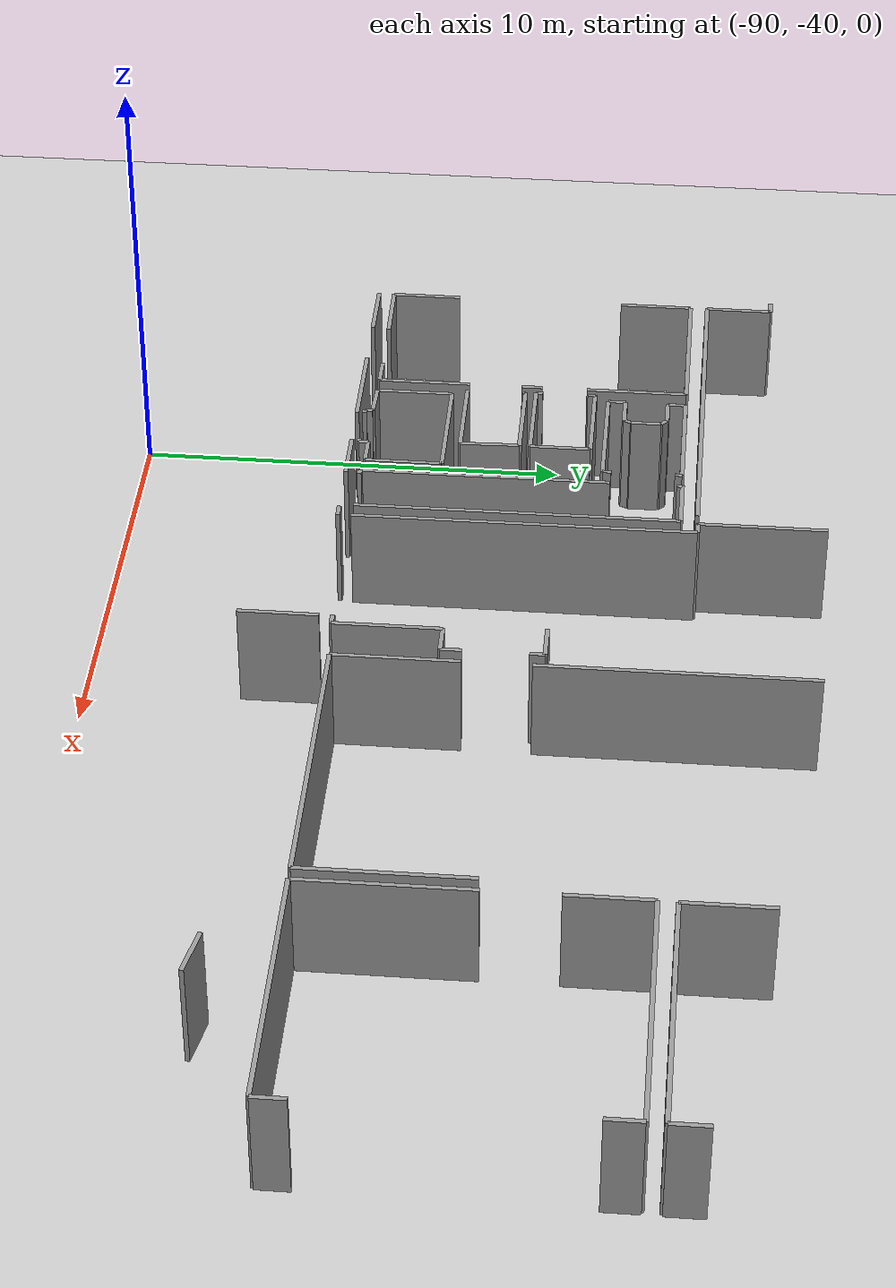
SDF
<sdf version="1.6">
 <world name="default">
  <model name="ground_plane">
   <static>1</static>
   <link name="link">
    <collision name="collision">
     <geometry><plane><normal>0 0 1</normal><size>100 100</size></plane></geometry>
     <surface><friction><ode><mu>100</mu><mu2>50</mu2></ode></friction></surface>
    </collision>
    <visual name="visual">
     <cast_shadows>0</cast_shadows>
     <geometry><plane><normal>0 0 1</normal><size>100 100</size></plane></geometry>
     <material>
      <script><uri>file://media/materials/scripts/gazebo.material</uri><name>Gazebo/Grey</name></script>
     </material>
    </visual>
   </link>
  </model>
  <model name="0510035517_A_40_1_105">
   <static>1</static>
   <link name="Wall_366">
    <collision name="Wall_366_Collision">
     <geometry><box><size>1.55747444133 0.1 2.5</size></box></geometry>
     <pose>0.778737220666 0 1.25 0 0 0</pose>
    </collision>
    <visual name="Wall_366_Visual">
     <pose>0.778737220666 0 1.25 0 0 0</pose>
     <geometry><box><size>1.55747444133 0.1 2.5</size></box></geometry>
     <material>
      <script><uri>file://media/materials/scripts/gazebo.material</uri><name>Gazebo/Grey</name></script>
      <ambient>1 1 1 1</ambient>
     </material>
    </visual>
    <pose>0.742646918663 -90.3431755653 0 0 0 1.57079632679</pose>
   </link>
   <link name="Wall_367">
    <collision name="Wall_367_Collision">
     <geometry><box><size>0.362936276472 0.1 2.5</size></box></geometry>
     <pose>0.181468138236 0 1.25 0 0 0</pose>
    </collision>
    <visual name="Wall_367_Visual">
     <pose>0.181468138236 0 1.25 0 0 0</pose>
     <geometry><box><size>0.362936276472 0.1 2.5</size></box></geometry>
     <material>
      <script><uri>file://media/materials/scripts/gazebo.material</uri><name>Gazebo/Grey</name></script>
      <ambient>1 1 1 1</ambient>
     </material>
    </visual>
    <pose>0.742646918663 -88.785701124 0 0 0 3.14159265359</pose>
   </link>
   <link name="Wall_374">
    <collision name="Wall_374_Collision">
     <geometry><box><size>8.55443944035 0.1 2.5</size></box></geometry>
     <pose>4.27721972017 0 1.25 0 0 0</pose>
    </collision>
    <visual name="Wall_374_Visual">
     <pose>4.27721972017 0 1.25 0 0 0</pose>
     <geometry><box><size>8.55443944035 0.1 2.5</size></box></geometry>
     <material>
      <script><uri>file://media/materials/scripts/gazebo.material</uri><name>Gazebo/Grey</name></script>
      <ambient>1 1 1 1</ambient>
     </material>
    </visual>
    <pose>9.29706512139 -90.3622373446 0 0 0 3.13936436088</pose>
   </link>
   <link name="Wall_375">
    <collision name="Wall_375_Collision">
     <geometry><box><size>5.75309912761 0.1 2.5</size></box></geometry>
     <pose>2.8765495638 0 1.25 0 0 0</pose>
    </collision>
    <visual name="Wall_375_Visual">
     <pose>2.8765495638 0 1.25 0 0 0</pose>
     <geometry><box><size>5.75309912761 0.1 2.5</size></box></geometry>
     <material>
      <script><uri>file://media/materials/scripts/gazebo.material</uri><name>Gazebo/Grey</name></script>
      <ambient>1 1 1 1</ambient>
     </material>
    </visual>
    <pose>8.18919451275 -98.1585050482 0 0 0 1.57079632679</pose>
   </link>
   <link name="Wall_376">
    <collision name="Wall_376_Collision">
     <geometry><box><size>0.129874255796 0.1 2.5</size></box></geometry>
     <pose>0.0649371278982 0 1.25 0 0 0</pose>
    </collision>
    <visual name="Wall_376_Visual">
     <pose>0.0649371278982 0 1.25 0 0 0</pose>
     <geometry><box><size>0.129874255796 0.1 2.5</size></box></geometry>
     <material>
      <script><uri>file://media/materials/scripts/gazebo.material</uri><name>Gazebo/Grey</name></script>
      <ambient>1 1 1 1</ambient>
     </material>
    </visual>
    <pose>8.18919451275 -90.8680098867 0 0 0 1.57079632679</pose>
   </link>
   <link name="Wall_377">
    <collision name="Wall_377_Collision">
     <geometry><box><size>1.33584948819 0.1 2.5</size></box></geometry>
     <pose>0.667924744096 0 1.25 0 0 0</pose>
    </collision>
    <visual name="Wall_377_Visual">
     <pose>0.667924744096 0 1.25 0 0 0</pose>
     <geometry><box><size>1.33584948819 0.1 2.5</size></box></geometry>
     <material>
      <script><uri>file://media/materials/scripts/gazebo.material</uri><name>Gazebo/Grey</name></script>
      <ambient>1 1 1 1</ambient>
     </material>
    </visual>
    <pose>8.18919451275 -90.7381356309 0 0 0 0.0</pose>
   </link>
   <link name="Wall_378">
    <collision name="Wall_378_Collision">
     <geometry><box><size>7.45010579287 0.1 2.5</size></box></geometry>
     <pose>3.72505289644 0 1.25 0 0 0</pose>
    </collision>
    <visual name="Wall_378_Visual">
     <pose>3.72505289644 0 1.25 0 0 0</pose>
     <geometry><box><size>7.45010579287 0.1 2.5</size></box></geometry>
     <material>
      <script><uri>file://media/materials/scripts/gazebo.material</uri><name>Gazebo/Grey</name></script>
      <ambient>1 1 1 1</ambient>
     </material>
    </visual>
    <pose>9.52504400094 -90.7381356309 0 0 0 -1.57079632679</pose>
   </link>
   <link name="Wall_379">
    <collision name="Wall_379_Collision">
     <geometry><box><size>0.132739590557 0.1 2.5</size></box></geometry>
     <pose>0.0663697952783 0 1.25 0 0 0</pose>
    </collision>
    <visual name="Wall_379_Visual">
     <pose>0.0663697952783 0 1.25 0 0 0</pose>
     <geometry><box><size>0.132739590557 0.1 2.5</size></box></geometry>
     <material>
      <script><uri>file://media/materials/scripts/gazebo.material</uri><name>Gazebo/Grey</name></script>
      <ambient>1 1 1 1</ambient>
     </material>
    </visual>
    <pose>8.31856045443 -98.1882414238 0 0 0 2.91565488454</pose>
   </link>
   <link name="Wall_380">
    <collision name="Wall_380_Collision">
     <geometry><box><size>0.408938703672 0.1 2.5</size></box></geometry>
     <pose>0.204469351836 0 1.25 0 0 0</pose>
    </collision>
    <visual name="Wall_380_Visual">
     <pose>0.204469351836 0 1.25 0 0 0</pose>
     <geometry><box><size>0.408938703672 0.1 2.5</size></box></geometry>
     <material>
      <script><uri>file://media/materials/scripts/gazebo.material</uri><name>Gazebo/Grey</name></script>
      <ambient>1 1 1 1</ambient>
     </material>
    </visual>
    <pose>4.94233811784 -92.5927196711 0 0 0 1.57079632679</pose>
   </link>
   <link name="Wall_381">
    <collision name="Wall_381_Collision">
     <geometry><box><size>0.739342876931 0.1 2.5</size></box></geometry>
     <pose>0.369671438465 0 1.25 0 0 0</pose>
    </collision>
    <visual name="Wall_381_Visual">
     <pose>0.369671438465 0 1.25 0 0 0</pose>
     <geometry><box><size>0.739342876931 0.1 2.5</size></box></geometry>
     <material>
      <script><uri>file://media/materials/scripts/gazebo.material</uri><name>Gazebo/Grey</name></script>
      <ambient>1 1 1 1</ambient>
     </material>
    </visual>
    <pose>4.94233811784 -92.1837809674 0 0 0 0.0</pose>
   </link>
   <link name="Wall_382">
    <collision name="Wall_382_Collision">
     <geometry><box><size>0.188575972376 0.1 2.5</size></box></geometry>
     <pose>0.0942879861882 0 1.25 0 0 0</pose>
    </collision>
    <visual name="Wall_382_Visual">
     <pose>0.0942879861882 0 1.25 0 0 0</pose>
     <geometry><box><size>0.188575972376 0.1 2.5</size></box></geometry>
     <material>
      <script><uri>file://media/materials/scripts/gazebo.material</uri><name>Gazebo/Grey</name></script>
      <ambient>1 1 1 1</ambient>
     </material>
    </visual>
    <pose>5.68168099477 -92.1837809674 0 0 0 1.11739549598</pose>
   </link>
   <link name="Wall_383">
    <collision name="Wall_383_Collision">
     <geometry><box><size>0.706302459605 0.1 2.5</size></box></geometry>
     <pose>0.353151229802 0 1.25 0 0 0</pose>
    </collision>
    <visual name="Wall_383_Visual">
     <pose>0.353151229802 0 1.25 0 0 0</pose>
     <geometry><box><size>0.706302459605 0.1 2.5</size></box></geometry>
     <material>
      <script><uri>file://media/materials/scripts/gazebo.material</uri><name>Gazebo/Grey</name></script>
      <ambient>1 1 1 1</ambient>
     </material>
    </visual>
    <pose>5.76428203809 -92.0142582109 0 0 0 1.57079632679</pose>
   </link>
   <link name="Wall_384">
    <collision name="Wall_384_Collision">
     <geometry><box><size>0.189802066533 0.1 2.5</size></box></geometry>
     <pose>0.0949010332663 0 1.25 0 0 0</pose>
    </collision>
    <visual name="Wall_384_Visual">
     <pose>0.0949010332663 0 1.25 0 0 0</pose>
     <geometry><box><size>0.189802066533 0.1 2.5</size></box></geometry>
     <material>
      <script><uri>file://media/materials/scripts/gazebo.material</uri><name>Gazebo/Grey</name></script>
      <ambient>1 1 1 1</ambient>
     </material>
    </visual>
    <pose>5.76428203809 -91.3079557513 0 0 0 2.37134484607</pose>
   </link>
   <link name="Wall_385">
    <collision name="Wall_385_Collision">
     <geometry><box><size>0.669195529377 0.1 2.5</size></box></geometry>
     <pose>0.334597764689 0 1.25 0 0 0</pose>
    </collision>
    <visual name="Wall_385_Visual">
     <pose>0.334597764689 0 1.25 0 0 0</pose>
     <geometry><box><size>0.669195529377 0.1 2.5</size></box></geometry>
     <material>
      <script><uri>file://media/materials/scripts/gazebo.material</uri><name>Gazebo/Grey</name></script>
      <ambient>1 1 1 1</ambient>
     </material>
    </visual>
    <pose>5.62805385588 -91.175794082 0 0 0 3.14159265359</pose>
   </link>
   <link name="Wall_386">
    <collision name="Wall_386_Collision">
     <geometry><box><size>0.417325886532 0.1 2.5</size></box></geometry>
     <pose>0.208662943266 0 1.25 0 0 0</pose>
    </collision>
    <visual name="Wall_386_Visual">
     <pose>0.208662943266 0 1.25 0 0 0</pose>
     <geometry><box><size>0.417325886532 0.1 2.5</size></box></geometry>
     <material>
      <script><uri>file://media/materials/scripts/gazebo.material</uri><name>Gazebo/Grey</name></script>
      <ambient>1 1 1 1</ambient>
     </material>
    </visual>
    <pose>4.9588583265 -91.175794082 0 0 0 1.57079632679</pose>
   </link>
   <link name="Wall_387">
    <collision name="Wall_387_Collision">
     <geometry><box><size>2.81301029971 0.1 2.5</size></box></geometry>
     <pose>1.40650514986 0 1.25 0 0 0</pose>
    </collision>
    <visual name="Wall_387_Visual">
     <pose>1.40650514986 0 1.25 0 0 0</pose>
     <geometry><box><size>2.81301029971 0.1 2.5</size></box></geometry>
     <material>
      <script><uri>file://media/materials/scripts/gazebo.material</uri><name>Gazebo/Grey</name></script>
      <ambient>1 1 1 1</ambient>
     </material>
    </visual>
    <pose>4.9588583265 -90.7584681954 0 0 0 0.0</pose>
   </link>
   <link name="Wall_388">
    <collision name="Wall_388_Collision">
     <geometry><box><size>0.164693772517 0.1 2.5</size></box></geometry>
     <pose>0.0823468862584 0 1.25 0 0 0</pose>
    </collision>
    <visual name="Wall_388_Visual">
     <pose>0.0823468862584 0 1.25 0 0 0</pose>
     <geometry><box><size>0.164693772517 0.1 2.5</size></box></geometry>
     <material>
      <script><uri>file://media/materials/scripts/gazebo.material</uri><name>Gazebo/Grey</name></script>
      <ambient>1 1 1 1</ambient>
     </material>
    </visual>
    <pose>7.77186862622 -90.7584681954 0 0 0 -1.57079632679</pose>
   </link>
   <link name="Wall_389">
    <collision name="Wall_389_Collision">
     <geometry><box><size>0.198496661012 0.1 2.5</size></box></geometry>
     <pose>0.0992483305058 0 1.25 0 0 0</pose>
    </collision>
    <visual name="Wall_389_Visual">
     <pose>0.0992483305058 0 1.25 0 0 0</pose>
     <geometry><box><size>0.198496661012 0.1 2.5</size></box></geometry>
     <material>
      <script><uri>file://media/materials/scripts/gazebo.material</uri><name>Gazebo/Grey</name></script>
      <ambient>1 1 1 1</ambient>
     </material>
    </visual>
    <pose>7.77186862622 -92.3942230101 0 0 0 -1.57079632679</pose>
   </link>
   <link name="Wall_390">
    <collision name="Wall_390_Collision">
     <geometry><box><size>2.82953050838 0.1 2.5</size></box></geometry>
     <pose>1.41476525419 0 1.25 0 0 0</pose>
    </collision>
    <visual name="Wall_390_Visual">
     <pose>1.41476525419 0 1.25 0 0 0</pose>
     <geometry><box><size>2.82953050838 0.1 2.5</size></box></geometry>
     <material>
      <script><uri>file://media/materials/scripts/gazebo.material</uri><name>Gazebo/Grey</name></script>
      <ambient>1 1 1 1</ambient>
     </material>
    </visual>
    <pose>7.77186862622 -92.5927196711 0 0 0 3.14159265359</pose>
   </link>
   <link name="Wall_391">
    <collision name="Wall_391_Collision">
     <geometry><box><size>1.64490446872 0.1 2.5</size></box></geometry>
     <pose>0.822452234358 0 1.25 0 0 0</pose>
    </collision>
    <visual name="Wall_391_Visual">
     <pose>0.822452234358 0 1.25 0 0 0</pose>
     <geometry><box><size>1.64490446872 0.1 2.5</size></box></geometry>
     <material>
      <script><uri>file://media/materials/scripts/gazebo.material</uri><name>Gazebo/Grey</name></script>
      <ambient>1 1 1 1</ambient>
     </material>
    </visual>
    <pose>0.739342876931 -98.1226689032 0 0 0 1.57079632679</pose>
   </link>
   <link name="Wall_392">
    <collision name="Wall_392_Collision">
     <geometry><box><size>1.71962664328 0.1 2.5</size></box></geometry>
     <pose>0.859813321642 0 1.25 0 0 0</pose>
    </collision>
    <visual name="Wall_392_Visual">
     <pose>0.859813321642 0 1.25 0 0 0</pose>
     <geometry><box><size>1.71962664328 0.1 2.5</size></box></geometry>
     <material>
      <script><uri>file://media/materials/scripts/gazebo.material</uri><name>Gazebo/Grey</name></script>
      <ambient>1 1 1 1</ambient>
     </material>
    </visual>
    <pose>0.739342876931 -92.4719950694 0 0 0 1.57079632679</pose>
   </link>
   <link name="Wall_393">
    <collision name="Wall_393_Collision">
     <geometry><box><size>3.75720376407 0.1 2.5</size></box></geometry>
     <pose>1.87860188203 0 1.25 0 0 0</pose>
    </collision>
    <visual name="Wall_393_Visual">
     <pose>1.87860188203 0 1.25 0 0 0</pose>
     <geometry><box><size>3.75720376407 0.1 2.5</size></box></geometry>
     <material>
      <script><uri>file://media/materials/scripts/gazebo.material</uri><name>Gazebo/Grey</name></script>
      <ambient>1 1 1 1</ambient>
     </material>
    </visual>
    <pose>0.739342876931 -90.7523684261 0 0 0 0.0</pose>
   </link>
   <link name="Wall_394">
    <collision name="Wall_394_Collision">
     <geometry><box><size>2.36874376521 0.1 2.5</size></box></geometry>
     <pose>1.1843718826 0 1.25 0 0 0</pose>
    </collision>
    <visual name="Wall_394_Visual">
     <pose>1.1843718826 0 1.25 0 0 0</pose>
     <geometry><box><size>2.36874376521 0.1 2.5</size></box></geometry>
     <material>
      <script><uri>file://media/materials/scripts/gazebo.material</uri><name>Gazebo/Grey</name></script>
      <ambient>1 1 1 1</ambient>
     </material>
    </visual>
    <pose>4.496546641 -90.7523684261 0 0 0 -1.57079632679</pose>
   </link>
   <link name="Wall_395">
    <collision name="Wall_395_Collision">
     <geometry><box><size>0.490268961705 0.1 2.5</size></box></geometry>
     <pose>0.245134480852 0 1.25 0 0 0</pose>
    </collision>
    <visual name="Wall_395_Visual">
     <pose>0.245134480852 0 1.25 0 0 0</pose>
     <geometry><box><size>0.490268961705 0.1 2.5</size></box></geometry>
     <material>
      <script><uri>file://media/materials/scripts/gazebo.material</uri><name>Gazebo/Grey</name></script>
      <ambient>1 1 1 1</ambient>
     </material>
    </visual>
    <pose>4.496546641 -94.1928924979 0 0 0 -1.57079632679</pose>
   </link>
   <link name="Wall_396">
    <collision name="Wall_396_Collision">
     <geometry><box><size>2.16872216186 0.1 2.5</size></box></geometry>
     <pose>1.08436108093 0 1.25 0 0 0</pose>
    </collision>
    <visual name="Wall_396_Visual">
     <pose>1.08436108093 0 1.25 0 0 0</pose>
     <geometry><box><size>2.16872216186 0.1 2.5</size></box></geometry>
     <material>
      <script><uri>file://media/materials/scripts/gazebo.material</uri><name>Gazebo/Grey</name></script>
      <ambient>1 1 1 1</ambient>
     </material>
    </visual>
    <pose>4.496546641 -95.9325975487 0 0 0 -1.57079632679</pose>
   </link>
   <link name="Wall_397">
    <collision name="Wall_397_Collision">
     <geometry><box><size>0.70731908783 0.1 2.5</size></box></geometry>
     <pose>0.353659543915 0 1.25 0 0 0</pose>
    </collision>
    <visual name="Wall_397_Visual">
     <pose>0.353659543915 0 1.25 0 0 0</pose>
     <geometry><box><size>0.70731908783 0.1 2.5</size></box></geometry>
     <material>
      <script><uri>file://media/materials/scripts/gazebo.material</uri><name>Gazebo/Grey</name></script>
      <ambient>1 1 1 1</ambient>
     </material>
    </visual>
    <pose>4.496546641 -98.1013197105 0 0 0 3.14159265359</pose>
   </link>
   <link name="Wall_398">
    <collision name="Wall_398_Collision">
     <geometry><box><size>1.55939968972 0.1 2.5</size></box></geometry>
     <pose>0.779699844859 0 1.25 0 0 0</pose>
    </collision>
    <visual name="Wall_398_Visual">
     <pose>0.779699844859 0 1.25 0 0 0</pose>
     <geometry><box><size>1.55939968972 0.1 2.5</size></box></geometry>
     <material>
      <script><uri>file://media/materials/scripts/gazebo.material</uri><name>Gazebo/Grey</name></script>
      <ambient>1 1 1 1</ambient>
     </material>
    </visual>
    <pose>2.29859641766 -98.1013197105 0 0 0 -3.12790157756</pose>
   </link>
   <link name="Wall_399">
    <collision name="Wall_399_Collision">
     <geometry><box><size>2.14838959735 0.1 2.5</size></box></geometry>
     <pose>1.07419479868 0 1.25 0 0 0</pose>
    </collision>
    <visual name="Wall_399_Visual">
     <pose>1.07419479868 0 1.25 0 0 0</pose>
     <geometry><box><size>2.14838959735 0.1 2.5</size></box></geometry>
     <material>
      <script><uri>file://media/materials/scripts/gazebo.material</uri><name>Gazebo/Grey</name></script>
      <ambient>1 1 1 1</ambient>
     </material>
    </visual>
    <pose>4.76620727779 -92.9172782321 0 0 0 0.0</pose>
   </link>
   <link name="Wall_400">
    <collision name="Wall_400_Collision">
     <geometry><box><size>1.40930087748 0.1 2.5</size></box></geometry>
     <pose>0.704650438739 0 1.25 0 0 0</pose>
    </collision>
    <visual name="Wall_400_Visual">
     <pose>0.704650438739 0 1.25 0 0 0</pose>
     <geometry><box><size>1.40930087748 0.1 2.5</size></box></geometry>
     <material>
      <script><uri>file://media/materials/scripts/gazebo.material</uri><name>Gazebo/Grey</name></script>
      <ambient>1 1 1 1</ambient>
     </material>
    </visual>
    <pose>6.91459687514 -92.9172782321 0 0 0 -1.57079632679</pose>
   </link>
   <link name="Wall_401">
    <collision name="Wall_401_Collision">
     <geometry><box><size>2.18702146992 0.1 2.5</size></box></geometry>
     <pose>1.09351073496 0 1.25 0 0 0</pose>
    </collision>
    <visual name="Wall_401_Visual">
     <pose>1.09351073496 0 1.25 0 0 0</pose>
     <geometry><box><size>2.18702146992 0.1 2.5</size></box></geometry>
     <material>
      <script><uri>file://media/materials/scripts/gazebo.material</uri><name>Gazebo/Grey</name></script>
      <ambient>1 1 1 1</ambient>
     </material>
    </visual>
    <pose>6.91459687514 -94.3265791096 0 0 0 3.14159265359</pose>
   </link>
   <link name="Wall_402">
    <collision name="Wall_402_Collision">
     <geometry><box><size>0.164185458404 0.1 2.5</size></box></geometry>
     <pose>0.082092729202 0 1.25 0 0 0</pose>
    </collision>
    <visual name="Wall_402_Visual">
     <pose>0.082092729202 0 1.25 0 0 0</pose>
     <geometry><box><size>0.164185458404 0.1 2.5</size></box></geometry>
     <material>
      <script><uri>file://media/materials/scripts/gazebo.material</uri><name>Gazebo/Grey</name></script>
      <ambient>1 1 1 1</ambient>
     </material>
    </visual>
    <pose>4.72757540522 -94.3265791096 0 0 0 1.57079632679</pose>
   </link>
   <link name="Wall_403">
    <collision name="Wall_403_Collision">
     <geometry><box><size>0.172318484207 0.1 2.5</size></box></geometry>
     <pose>0.0861592421037 0 1.25 0 0 0</pose>
    </collision>
    <visual name="Wall_403_Visual">
     <pose>0.0861592421037 0 1.25 0 0 0</pose>
     <geometry><box><size>0.172318484207 0.1 2.5</size></box></geometry>
     <material>
      <script><uri>file://media/materials/scripts/gazebo.material</uri><name>Gazebo/Grey</name></script>
      <ambient>1 1 1 1</ambient>
     </material>
    </visual>
    <pose>4.72757540522 -93.0898508733 0 0 0 1.57079632679</pose>
   </link>
   <link name="Wall_404">
    <collision name="Wall_404_Collision">
     <geometry><box><size>0.0386327085995 0.1 2.5</size></box></geometry>
     <pose>0.0193163542998 0 1.25 0 0 0</pose>
    </collision>
    <visual name="Wall_404_Visual">
     <pose>0.0193163542998 0 1.25 0 0 0</pose>
     <geometry><box><size>0.0386327085995 0.1 2.5</size></box></geometry>
     <material>
      <script><uri>file://media/materials/scripts/gazebo.material</uri><name>Gazebo/Grey</name></script>
      <ambient>1 1 1 1</ambient>
     </material>
    </visual>
    <pose>4.72757540522 -92.9175323891 0 0 0 0.00657885245322</pose>
   </link>
   <link name="Wall_405">
    <collision name="Wall_405_Collision">
     <geometry><box><size>2.18041338645 0.1 2.5</size></box></geometry>
     <pose>1.09020669323 0 1.25 0 0 0</pose>
    </collision>
    <visual name="Wall_405_Visual">
     <pose>1.09020669323 0 1.25 0 0 0</pose>
     <geometry><box><size>2.18041338645 0.1 2.5</size></box></geometry>
     <material>
      <script><uri>file://media/materials/scripts/gazebo.material</uri><name>Gazebo/Grey</name></script>
      <ambient>1 1 1 1</ambient>
     </material>
    </visual>
    <pose>6.93620022493 -95.9636047095 0 0 0 3.14159265359</pose>
   </link>
   <link name="Wall_406">
    <collision name="Wall_406_Collision">
     <geometry><box><size>0.0569311806231 0.1 2.5</size></box></geometry>
     <pose>0.0284655903115 0 1.25 0 0 0</pose>
    </collision>
    <visual name="Wall_406_Visual">
     <pose>0.0284655903115 0 1.25 0 0 0</pose>
     <geometry><box><size>0.0569311806231 0.1 2.5</size></box></geometry>
     <material>
      <script><uri>file://media/materials/scripts/gazebo.material</uri><name>Gazebo/Grey</name></script>
      <ambient>1 1 1 1</ambient>
     </material>
    </visual>
    <pose>4.75578683848 -94.6333466766 0 0 0 1.57079632679</pose>
   </link>
   <link name="Wall_407">
    <collision name="Wall_407_Collision">
     <geometry><box><size>2.14254398506 0.1 2.5</size></box></geometry>
     <pose>1.07127199253 0 1.25 0 0 0</pose>
    </collision>
    <visual name="Wall_407_Visual">
     <pose>1.07127199253 0 1.25 0 0 0</pose>
     <geometry><box><size>2.14254398506 0.1 2.5</size></box></geometry>
     <material>
      <script><uri>file://media/materials/scripts/gazebo.material</uri><name>Gazebo/Grey</name></script>
      <ambient>1 1 1 1</ambient>
     </material>
    </visual>
    <pose>4.75578683848 -94.576415496 0 0 0 0.0</pose>
   </link>
   <link name="Wall_408">
    <collision name="Wall_408_Collision">
     <geometry><box><size>1.38770602284 0.1 2.5</size></box></geometry>
     <pose>0.693853011419 0 1.25 0 0 0</pose>
    </collision>
    <visual name="Wall_408_Visual">
     <pose>0.693853011419 0 1.25 0 0 0</pose>
     <geometry><box><size>1.38770602284 0.1 2.5</size></box></geometry>
     <material>
      <script><uri>file://media/materials/scripts/gazebo.material</uri><name>Gazebo/Grey</name></script>
      <ambient>1 1 1 1</ambient>
     </material>
    </visual>
    <pose>6.89833082353 -94.576415496 0 0 0 -1.54350372838</pose>
   </link>
   <link name="Wall_409">
    <collision name="Wall_409_Collision">
     <geometry><box><size>3.79964799248 0.1 2.5</size></box></geometry>
     <pose>1.89982399624 0 1.25 0 0 0</pose>
    </collision>
    <visual name="Wall_409_Visual">
     <pose>1.89982399624 0 1.25 0 0 0</pose>
     <geometry><box><size>3.79964799248 0.1 2.5</size></box></geometry>
     <material>
      <script><uri>file://media/materials/scripts/gazebo.material</uri><name>Gazebo/Grey</name></script>
      <ambient>1 1 1 1</ambient>
     </material>
    </visual>
    <pose>21.9482409155 -98.1272437303 0 0 0 1.57079632679</pose>
   </link>
   <link name="Wall_410">
    <collision name="Wall_410_Collision">
     <geometry><box><size>1.87262919121 0.1 2.5</size></box></geometry>
     <pose>0.936314595604 0 1.25 0 0 0</pose>
    </collision>
    <visual name="Wall_410_Visual">
     <pose>0.936314595604 0 1.25 0 0 0</pose>
     <geometry><box><size>1.87262919121 0.1 2.5</size></box></geometry>
     <material>
      <script><uri>file://media/materials/scripts/gazebo.material</uri><name>Gazebo/Grey</name></script>
      <ambient>1 1 1 1</ambient>
     </material>
    </visual>
    <pose>21.9482409155 -92.6936200225 0 0 0 1.57079632679</pose>
   </link>
   <link name="Wall_411">
    <collision name="Wall_411_Collision">
     <geometry><box><size>5.83239612919 0.1 2.5</size></box></geometry>
     <pose>2.91619806459 0 1.25 0 0 0</pose>
    </collision>
    <visual name="Wall_411_Visual">
     <pose>2.91619806459 0 1.25 0 0 0</pose>
     <geometry><box><size>5.83239612919 0.1 2.5</size></box></geometry>
     <material>
      <script><uri>file://media/materials/scripts/gazebo.material</uri><name>Gazebo/Grey</name></script>
      <ambient>1 1 1 1</ambient>
     </material>
    </visual>
    <pose>21.9482409155 -90.8209908313 0 0 0 0.0</pose>
   </link>
   <link name="Wall_412">
    <collision name="Wall_412_Collision">
     <geometry><box><size>0.788649345863 0.1 2.5</size></box></geometry>
     <pose>0.394324672932 0 1.25 0 0 0</pose>
    </collision>
    <visual name="Wall_412_Visual">
     <pose>0.394324672932 0 1.25 0 0 0</pose>
     <geometry><box><size>0.788649345863 0.1 2.5</size></box></geometry>
     <material>
      <script><uri>file://media/materials/scripts/gazebo.material</uri><name>Gazebo/Grey</name></script>
      <ambient>1 1 1 1</ambient>
     </material>
    </visual>
    <pose>27.7806370447 -90.8209908313 0 0 0 -1.57079632679</pose>
   </link>
   <link name="Wall_413">
    <collision name="Wall_413_Collision">
     <geometry><box><size>0.72612671 0.1 2.5</size></box></geometry>
     <pose>0.363063355 0 1.25 0 0 0</pose>
    </collision>
    <visual name="Wall_413_Visual">
     <pose>0.363063355 0 1.25 0 0 0</pose>
     <geometry><box><size>0.72612671 0.1 2.5</size></box></geometry>
     <material>
      <script><uri>file://media/materials/scripts/gazebo.material</uri><name>Gazebo/Grey</name></script>
      <ambient>1 1 1 1</ambient>
     </material>
    </visual>
    <pose>27.7806370447 -97.4041669049 0 0 0 -1.57079632679</pose>
   </link>
   <link name="Wall_414">
    <collision name="Wall_414_Collision">
     <geometry><box><size>5.83239692661 0.1 2.5</size></box></geometry>
     <pose>2.91619846331 0 1.25 0 0 0</pose>
    </collision>
    <visual name="Wall_414_Visual">
     <pose>2.91619846331 0 1.25 0 0 0</pose>
     <geometry><box><size>5.83239692661 0.1 2.5</size></box></geometry>
     <material>
      <script><uri>file://media/materials/scripts/gazebo.material</uri><name>Gazebo/Grey</name></script>
      <ambient>1 1 1 1</ambient>
     </material>
    </visual>
    <pose>27.7806370447 -98.1302936149 0 0 0 3.14106973225</pose>
   </link>
   <link name="Wall_415">
    <collision name="Wall_415_Collision">
     <geometry><box><size>1.98140841133 0.1 2.5</size></box></geometry>
     <pose>0.990704205664 0 1.25 0 0 0</pose>
    </collision>
    <visual name="Wall_415_Visual">
     <pose>0.990704205664 0 1.25 0 0 0</pose>
     <geometry><box><size>1.98140841133 0.1 2.5</size></box></geometry>
     <material>
      <script><uri>file://media/materials/scripts/gazebo.material</uri><name>Gazebo/Grey</name></script>
      <ambient>1 1 1 1</ambient>
     </material>
    </visual>
    <pose>21.9675568518 -90.4041732589 0 0 0 1.57079632679</pose>
   </link>
   <link name="Wall_419">
    <collision name="Wall_419_Collision">
     <geometry><box><size>0.831093574274 0.1 2.5</size></box></geometry>
     <pose>0.415546787137 0 1.25 0 0 0</pose>
    </collision>
    <visual name="Wall_419_Visual">
     <pose>0.415546787137 0 1.25 0 0 0</pose>
     <geometry><box><size>0.831093574274 0.1 2.5</size></box></geometry>
     <material>
      <script><uri>file://media/materials/scripts/gazebo.material</uri><name>Gazebo/Grey</name></script>
      <ambient>1 1 1 1</ambient>
     </material>
    </visual>
    <pose>27.7915657981 -89.5979870761 0 0 0 -1.57079632679</pose>
   </link>
   <link name="Wall_420">
    <collision name="Wall_420_Collision">
     <geometry><box><size>5.82406220649 0.1 2.5</size></box></geometry>
     <pose>2.91203110325 0 1.25 0 0 0</pose>
    </collision>
    <visual name="Wall_420_Visual">
     <pose>2.91203110325 0 1.25 0 0 0</pose>
     <geometry><box><size>5.82406220649 0.1 2.5</size></box></geometry>
     <material>
      <script><uri>file://media/materials/scripts/gazebo.material</uri><name>Gazebo/Grey</name></script>
      <ambient>1 1 1 1</ambient>
     </material>
    </visual>
    <pose>27.7915657981 -90.4290806504 0 0 0 3.137316005</pose>
   </link>
   <link name="Wall_445">
    <collision name="Wall_445_Collision">
     <geometry><box><size>2.83486780656 0.1 2.5</size></box></geometry>
     <pose>1.41743390328 0 1.25 0 0 0</pose>
    </collision>
    <visual name="Wall_445_Visual">
     <pose>1.41743390328 0 1.25 0 0 0</pose>
     <geometry><box><size>2.83486780656 0.1 2.5</size></box></geometry>
     <material>
      <script><uri>file://media/materials/scripts/gazebo.material</uri><name>Gazebo/Grey</name></script>
      <ambient>1 1 1 1</ambient>
     </material>
    </visual>
    <pose>14.9136819097 -98.1145358774 0 0 0 1.57079632679</pose>
   </link>
   <link name="Wall_446">
    <collision name="Wall_446_Collision">
     <geometry><box><size>6.21668159839 0.1 2.5</size></box></geometry>
     <pose>3.1083407992 0 1.25 0 0 0</pose>
    </collision>
    <visual name="Wall_446_Visual">
     <pose>3.1083407992 0 1.25 0 0 0</pose>
     <geometry><box><size>6.21668159839 0.1 2.5</size></box></geometry>
     <material>
      <script><uri>file://media/materials/scripts/gazebo.material</uri><name>Gazebo/Grey</name></script>
      <ambient>1 1 1 1</ambient>
     </material>
    </visual>
    <pose>14.9136819097 -93.7412554088 0 0 0 1.57079632679</pose>
   </link>
   <link name="Wall_459">
    <collision name="Wall_459_Collision">
     <geometry><box><size>3.75898286346 0.1 2.5</size></box></geometry>
     <pose>1.87949143173 0 1.25 0 0 0</pose>
    </collision>
    <visual name="Wall_459_Visual">
     <pose>1.87949143173 0 1.25 0 0 0</pose>
     <geometry><box><size>3.75898286346 0.1 2.5</size></box></geometry>
     <material>
      <script><uri>file://media/materials/scripts/gazebo.material</uri><name>Gazebo/Grey</name></script>
      <ambient>1 1 1 1</ambient>
     </material>
    </visual>
    <pose>21.6185992134 -94.3616527833 0 0 0 -1.57079632679</pose>
   </link>
   <link name="Wall_460">
    <collision name="Wall_460_Collision">
     <geometry><box><size>6.70492007827 0.1 2.5</size></box></geometry>
     <pose>3.35246003913 0 1.25 0 0 0</pose>
    </collision>
    <visual name="Wall_460_Visual">
     <pose>3.35246003913 0 1.25 0 0 0</pose>
     <geometry><box><size>6.70492007827 0.1 2.5</size></box></geometry>
     <material>
      <script><uri>file://media/materials/scripts/gazebo.material</uri><name>Gazebo/Grey</name></script>
      <ambient>1 1 1 1</ambient>
     </material>
    </visual>
    <pose>21.6185992134 -98.1206356468 0 0 0 3.14068290819</pose>
   </link>
   <link name="Wall_506">
    <collision name="Wall_506_Collision">
     <geometry><box><size>0.87252117446 0.1 2.5</size></box></geometry>
     <pose>0.43626058723 0 1.25 0 0 0</pose>
    </collision>
    <visual name="Wall_506_Visual">
     <pose>0.43626058723 0 1.25 0 0 0</pose>
     <geometry><box><size>0.87252117446 0.1 2.5</size></box></geometry>
     <material>
      <script><uri>file://media/materials/scripts/gazebo.material</uri><name>Gazebo/Grey</name></script>
      <ambient>1 1 1 1</ambient>
     </material>
    </visual>
    <pose>13.6672957054 -93.4962480065 0 0 0 0.0</pose>
   </link>
   <link name="Wall_507">
    <collision name="Wall_507_Collision">
     <geometry><box><size>0.334470686161 0.1 2.5</size></box></geometry>
     <pose>0.16723534308 0 1.25 0 0 0</pose>
    </collision>
    <visual name="Wall_507_Visual">
     <pose>0.16723534308 0 1.25 0 0 0</pose>
     <geometry><box><size>0.334470686161 0.1 2.5</size></box></geometry>
     <material>
      <script><uri>file://media/materials/scripts/gazebo.material</uri><name>Gazebo/Grey</name></script>
      <ambient>1 1 1 1</ambient>
     </material>
    </visual>
    <pose>14.5398168798 -93.4962480065 0 0 0 -1.57079632679</pose>
   </link>
   <link name="Wall_508">
    <collision name="Wall_508_Collision">
     <geometry><box><size>0.470698868366 0.1 2.5</size></box></geometry>
     <pose>0.235349434183 0 1.25 0 0 0</pose>
    </collision>
    <visual name="Wall_508_Visual">
     <pose>0.235349434183 0 1.25 0 0 0</pose>
     <geometry><box><size>0.470698868366 0.1 2.5</size></box></geometry>
     <material>
      <script><uri>file://media/materials/scripts/gazebo.material</uri><name>Gazebo/Grey</name></script>
      <ambient>1 1 1 1</ambient>
     </material>
    </visual>
    <pose>14.5398168798 -95.2923759237 0 0 0 -1.57079632679</pose>
   </link>
   <link name="Wall_509">
    <collision name="Wall_509_Collision">
     <geometry><box><size>0.697915276745 0.1 2.5</size></box></geometry>
     <pose>0.348957638373 0 1.25 0 0 0</pose>
    </collision>
    <visual name="Wall_509_Visual">
     <pose>0.348957638373 0 1.25 0 0 0</pose>
     <geometry><box><size>0.697915276745 0.1 2.5</size></box></geometry>
     <material>
      <script><uri>file://media/materials/scripts/gazebo.material</uri><name>Gazebo/Grey</name></script>
      <ambient>1 1 1 1</ambient>
     </material>
    </visual>
    <pose>14.5398168798 -95.7630747921 0 0 0 3.14159265359</pose>
   </link>
   <link name="Wall_510">
    <collision name="Wall_510_Collision">
     <geometry><box><size>2.43457044281 0.1 2.5</size></box></geometry>
     <pose>1.2172852214 0 1.25 0 0 0</pose>
    </collision>
    <visual name="Wall_510_Visual">
     <pose>1.2172852214 0 1.25 0 0 0</pose>
     <geometry><box><size>2.43457044281 0.1 2.5</size></box></geometry>
     <material>
      <script><uri>file://media/materials/scripts/gazebo.material</uri><name>Gazebo/Grey</name></script>
      <ambient>1 1 1 1</ambient>
     </material>
    </visual>
    <pose>13.8419016031 -95.7630747921 0 0 0 -1.57079632679</pose>
   </link>
   <link name="Wall_511">
    <collision name="Wall_511_Collision">
     <geometry><box><size>0.282622646665 0.1 2.5</size></box></geometry>
     <pose>0.141311323332 0 1.25 0 0 0</pose>
    </collision>
    <visual name="Wall_511_Visual">
     <pose>0.141311323332 0 1.25 0 0 0</pose>
     <geometry><box><size>0.282622646665 0.1 2.5</size></box></geometry>
     <material>
      <script><uri>file://media/materials/scripts/gazebo.material</uri><name>Gazebo/Grey</name></script>
      <ambient>1 1 1 1</ambient>
     </material>
    </visual>
    <pose>13.8419016031 -98.1976452349 0 0 0 3.14159265359</pose>
   </link>
   <link name="Wall_512">
    <collision name="Wall_512_Collision">
     <geometry><box><size>7.85167394191 0.1 2.5</size></box></geometry>
     <pose>3.92583697096 0 1.25 0 0 0</pose>
    </collision>
    <visual name="Wall_512_Visual">
     <pose>3.92583697096 0 1.25 0 0 0</pose>
     <geometry><box><size>7.85167394191 0.1 2.5</size></box></geometry>
     <material>
      <script><uri>file://media/materials/scripts/gazebo.material</uri><name>Gazebo/Grey</name></script>
      <ambient>1 1 1 1</ambient>
     </material>
    </visual>
    <pose>9.92025822357 -98.1976452349 0 0 0 1.57079632679</pose>
   </link>
   <link name="Wall_513">
    <collision name="Wall_513_Collision">
     <geometry><box><size>0.31566306399 0.1 2.5</size></box></geometry>
     <pose>0.157831531995 0 1.25 0 0 0</pose>
    </collision>
    <visual name="Wall_513_Visual">
     <pose>0.157831531995 0 1.25 0 0 0</pose>
     <geometry><box><size>0.31566306399 0.1 2.5</size></box></geometry>
     <material>
      <script><uri>file://media/materials/scripts/gazebo.material</uri><name>Gazebo/Grey</name></script>
      <ambient>1 1 1 1</ambient>
     </material>
    </visual>
    <pose>9.92025822357 -90.345971293 0 0 0 3.14159265359</pose>
   </link>
   <link name="Wall_514">
    <collision name="Wall_514_Collision">
     <geometry><box><size>2.94008882789 0.1 2.5</size></box></geometry>
     <pose>1.47004441395 0 1.25 0 0 0</pose>
    </collision>
    <visual name="Wall_514_Visual">
     <pose>1.47004441395 0 1.25 0 0 0</pose>
     <geometry><box><size>2.94008882789 0.1 2.5</size></box></geometry>
     <material>
      <script><uri>file://media/materials/scripts/gazebo.material</uri><name>Gazebo/Grey</name></script>
      <ambient>1 1 1 1</ambient>
     </material>
    </visual>
    <pose>9.60459515958 -90.345971293 0 0 0 1.57079632679</pose>
   </link>
   <link name="Wall_527">
    <collision name="Wall_527_Collision">
     <geometry><box><size>1.54857894436 0.1 2.5</size></box></geometry>
     <pose>0.774289472179 0 1.25 0 0 0</pose>
    </collision>
    <visual name="Wall_527_Visual">
     <pose>0.774289472179 0 1.25 0 0 0</pose>
     <geometry><box><size>1.54857894436 0.1 2.5</size></box></geometry>
     <material>
      <script><uri>file://media/materials/scripts/gazebo.material</uri><name>Gazebo/Grey</name></script>
      <ambient>1 1 1 1</ambient>
     </material>
    </visual>
    <pose>0.722822668268 -98.4972964043 0 0 0 0.0</pose>
   </link>
   <link name="Wall_528">
    <collision name="Wall_528_Collision">
     <geometry><box><size>2.31511662632 0.1 2.5</size></box></geometry>
     <pose>1.15755831316 0 1.25 0 0 0</pose>
    </collision>
    <visual name="Wall_528_Visual">
     <pose>1.15755831316 0 1.25 0 0 0</pose>
     <geometry><box><size>2.31511662632 0.1 2.5</size></box></geometry>
     <material>
      <script><uri>file://media/materials/scripts/gazebo.material</uri><name>Gazebo/Grey</name></script>
      <ambient>1 1 1 1</ambient>
     </material>
    </visual>
    <pose>3.59759313268 -98.4972964043 0 0 0 0.0</pose>
   </link>
   <link name="Wall_529">
    <collision name="Wall_529_Collision">
     <geometry><box><size>1.28705133337 0.1 2.5</size></box></geometry>
     <pose>0.643525666686 0 1.25 0 0 0</pose>
    </collision>
    <visual name="Wall_529_Visual">
     <pose>0.643525666686 0 1.25 0 0 0</pose>
     <geometry><box><size>1.28705133337 0.1 2.5</size></box></geometry>
     <material>
      <script><uri>file://media/materials/scripts/gazebo.material</uri><name>Gazebo/Grey</name></script>
      <ambient>1 1 1 1</ambient>
     </material>
    </visual>
    <pose>6.99643544728 -98.4972964043 0 0 0 0.0</pose>
   </link>
   <link name="Wall_530">
    <collision name="Wall_530_Collision">
     <geometry><box><size>0.32405024685 0.1 2.5</size></box></geometry>
     <pose>0.162025123425 0 1.25 0 0 0</pose>
    </collision>
    <visual name="Wall_530_Visual">
     <pose>0.162025123425 0 1.25 0 0 0</pose>
     <geometry><box><size>0.32405024685 0.1 2.5</size></box></geometry>
     <material>
      <script><uri>file://media/materials/scripts/gazebo.material</uri><name>Gazebo/Grey</name></script>
      <ambient>1 1 1 1</ambient>
     </material>
    </visual>
    <pose>9.61272818538 -98.4972964043 0 0 0 0.0</pose>
   </link>
   <link name="Wall_531">
    <collision name="Wall_531_Collision">
     <geometry><box><size>1.81061486946 0.1 2.5</size></box></geometry>
     <pose>0.905307434729 0 1.25 0 0 0</pose>
    </collision>
    <visual name="Wall_531_Visual">
     <pose>0.905307434729 0 1.25 0 0 0</pose>
     <geometry><box><size>1.81061486946 0.1 2.5</size></box></geometry>
     <material>
      <script><uri>file://media/materials/scripts/gazebo.material</uri><name>Gazebo/Grey</name></script>
      <ambient>1 1 1 1</ambient>
     </material>
    </visual>
    <pose>13.5864737615 -98.4972964043 0 0 0 -1.57079632679</pose>
   </link>
   <link name="Wall_544">
    <collision name="Wall_544_Collision">
     <geometry><box><size>1.78672410616 0.1 2.5</size></box></geometry>
     <pose>0.893362053081 0 1.25 0 0 0</pose>
    </collision>
    <visual name="Wall_544_Visual">
     <pose>0.893362053081 0 1.25 0 0 0</pose>
     <geometry><box><size>1.78672410616 0.1 2.5</size></box></geometry>
     <material>
      <script><uri>file://media/materials/scripts/gazebo.material</uri><name>Gazebo/Grey</name></script>
      <ambient>1 1 1 1</ambient>
     </material>
    </visual>
    <pose>4.93395093498 -98.1071653228 0 0 0 1.57079632679</pose>
   </link>
   <link name="Wall_545">
    <collision name="Wall_545_Collision">
     <geometry><box><size>2.83512196362 0.1 2.5</size></box></geometry>
     <pose>1.41756098181 0 1.25 0 0 0</pose>
    </collision>
    <visual name="Wall_545_Visual">
     <pose>1.41756098181 0 1.25 0 0 0</pose>
     <geometry><box><size>2.83512196362 0.1 2.5</size></box></geometry>
     <material>
      <script><uri>file://media/materials/scripts/gazebo.material</uri><name>Gazebo/Grey</name></script>
      <ambient>1 1 1 1</ambient>
     </material>
    </visual>
    <pose>4.93395093498 -96.3204412166 0 0 0 0.0</pose>
   </link>
   <link name="Wall_546">
    <collision name="Wall_546_Collision">
     <geometry><box><size>1.78646994911 0.1 2.5</size></box></geometry>
     <pose>0.893234974553 0 1.25 0 0 0</pose>
    </collision>
    <visual name="Wall_546_Visual">
     <pose>0.893234974553 0 1.25 0 0 0</pose>
     <geometry><box><size>1.78646994911 0.1 2.5</size></box></geometry>
     <material>
      <script><uri>file://media/materials/scripts/gazebo.material</uri><name>Gazebo/Grey</name></script>
      <ambient>1 1 1 1</ambient>
     </material>
    </visual>
    <pose>7.7690728986 -96.3204412166 0 0 0 -1.57079632679</pose>
   </link>
   <link name="Wall_547">
    <collision name="Wall_547_Collision">
     <geometry><box><size>0.70731908783 0.1 2.5</size></box></geometry>
     <pose>0.353659543915 0 1.25 0 0 0</pose>
    </collision>
    <visual name="Wall_547_Visual">
     <pose>0.353659543915 0 1.25 0 0 0</pose>
     <geometry><box><size>0.70731908783 0.1 2.5</size></box></geometry>
     <material>
      <script><uri>file://media/materials/scripts/gazebo.material</uri><name>Gazebo/Grey</name></script>
      <ambient>1 1 1 1</ambient>
     </material>
    </visual>
    <pose>7.7690728986 -98.1069111658 0 0 0 3.14159265359</pose>
   </link>
   <link name="Wall_548">
    <collision name="Wall_548_Collision">
     <geometry><box><size>0.212983613224 0.1 2.5</size></box></geometry>
     <pose>0.106491806612 0 1.25 0 0 0</pose>
    </collision>
    <visual name="Wall_548_Visual">
     <pose>0.106491806612 0 1.25 0 0 0</pose>
     <geometry><box><size>0.212983613224 0.1 2.5</size></box></geometry>
     <material>
      <script><uri>file://media/materials/scripts/gazebo.material</uri><name>Gazebo/Grey</name></script>
      <ambient>1 1 1 1</ambient>
     </material>
    </visual>
    <pose>7.06175381077 -98.1069111658 0 0 0 -1.57079632679</pose>
   </link>
   <link name="Wall_549">
    <collision name="Wall_549_Collision">
     <geometry><box><size>0.120216287655 0.1 2.5</size></box></geometry>
     <pose>0.0601081438275 0 1.25 0 0 0</pose>
    </collision>
    <visual name="Wall_549_Visual">
     <pose>0.0601081438275 0 1.25 0 0 0</pose>
     <geometry><box><size>0.120216287655 0.1 2.5</size></box></geometry>
     <material>
      <script><uri>file://media/materials/scripts/gazebo.material</uri><name>Gazebo/Grey</name></script>
      <ambient>1 1 1 1</ambient>
     </material>
    </visual>
    <pose>7.06175381077 -98.319894779 0 0 0 3.14159265359</pose>
   </link>
   <link name="Wall_550">
    <collision name="Wall_550_Collision">
     <geometry><box><size>0.109287534232 0.1 2.5</size></box></geometry>
     <pose>0.0546437671159 0 1.25 0 0 0</pose>
    </collision>
    <visual name="Wall_550_Visual">
     <pose>0.0546437671159 0 1.25 0 0 0</pose>
     <geometry><box><size>0.109287534232 0.1 2.5</size></box></geometry>
     <material>
      <script><uri>file://media/materials/scripts/gazebo.material</uri><name>Gazebo/Grey</name></script>
      <ambient>1 1 1 1</ambient>
     </material>
    </visual>
    <pose>5.88170259812 -98.319894779 0 0 0 3.14159265359</pose>
   </link>
   <link name="Wall_551">
    <collision name="Wall_551_Collision">
     <geometry><box><size>0.185788808194 0.1 2.5</size></box></geometry>
     <pose>0.092894404097 0 1.25 0 0 0</pose>
    </collision>
    <visual name="Wall_551_Visual">
     <pose>0.092894404097 0 1.25 0 0 0</pose>
     <geometry><box><size>0.185788808194 0.1 2.5</size></box></geometry>
     <material>
      <script><uri>file://media/materials/scripts/gazebo.material</uri><name>Gazebo/Grey</name></script>
      <ambient>1 1 1 1</ambient>
     </material>
    </visual>
    <pose>5.77241506389 -98.319894779 0 0 0 1.57079632679</pose>
   </link>
   <link name="Wall_552">
    <collision name="Wall_552_Collision">
     <geometry><box><size>0.838896831547 0.1 2.5</size></box></geometry>
     <pose>0.419448415773 0 1.25 0 0 0</pose>
    </collision>
    <visual name="Wall_552_Visual">
     <pose>0.419448415773 0 1.25 0 0 0</pose>
     <geometry><box><size>0.838896831547 0.1 2.5</size></box></geometry>
     <material>
      <script><uri>file://media/materials/scripts/gazebo.material</uri><name>Gazebo/Grey</name></script>
      <ambient>1 1 1 1</ambient>
     </material>
    </visual>
    <pose>5.77241506389 -98.1341059708 0 0 0 3.10947275528</pose>
   </link>
   <link name="Wall_581">
    <collision name="Wall_581_Collision">
     <geometry><box><size>1.08511538922 0.1 2.5</size></box></geometry>
     <pose>0.542557694609 0 1.25 0 0 0</pose>
    </collision>
    <visual name="Wall_581_Visual">
     <pose>0.542557694609 0 1.25 0 0 0</pose>
     <geometry><box><size>1.08511538922 0.1 2.5</size></box></geometry>
     <material>
      <script><uri>file://media/materials/scripts/gazebo.material</uri><name>Gazebo/Grey</name></script>
      <ambient>1 1 1 1</ambient>
     </material>
    </visual>
    <pose>23.5959411118 -99.6349033885 0 0 0 -0.200427245555</pose>
   </link>
   <pose>-94.6 63.7835382475 0 0 0 0</pose>
  </model>
 </world>
</sdf>
